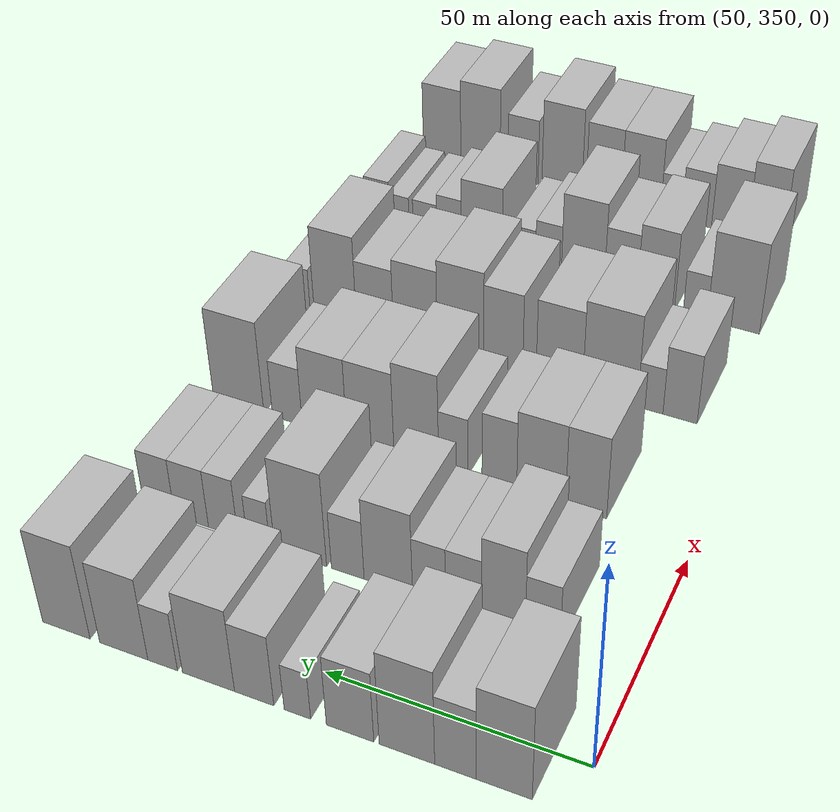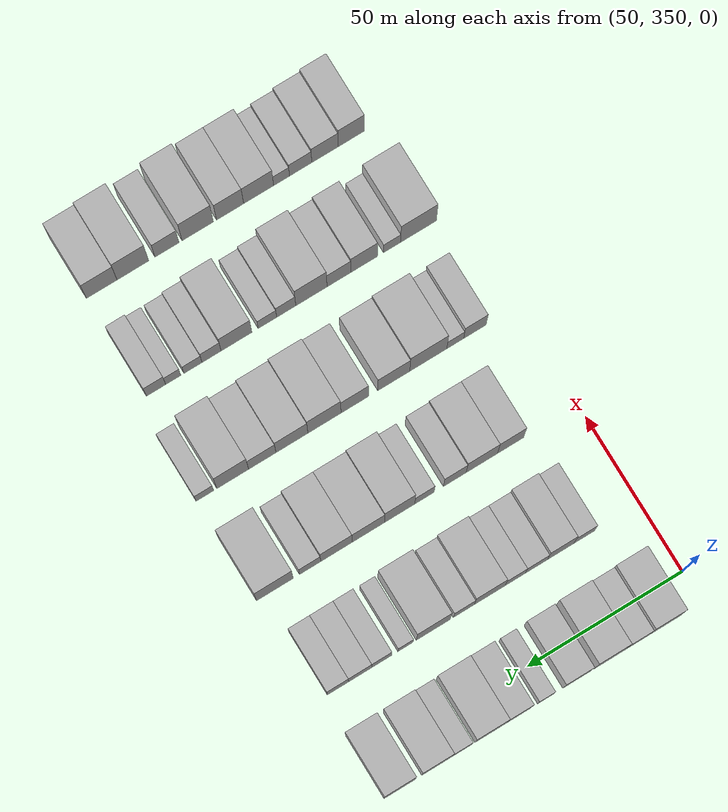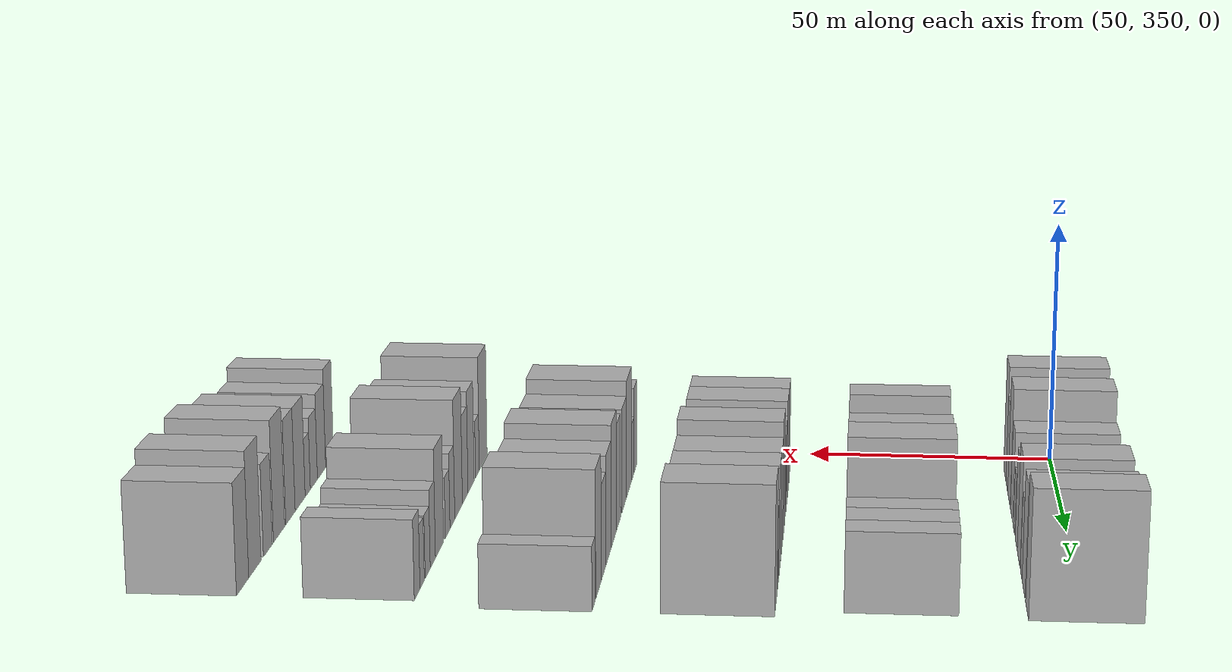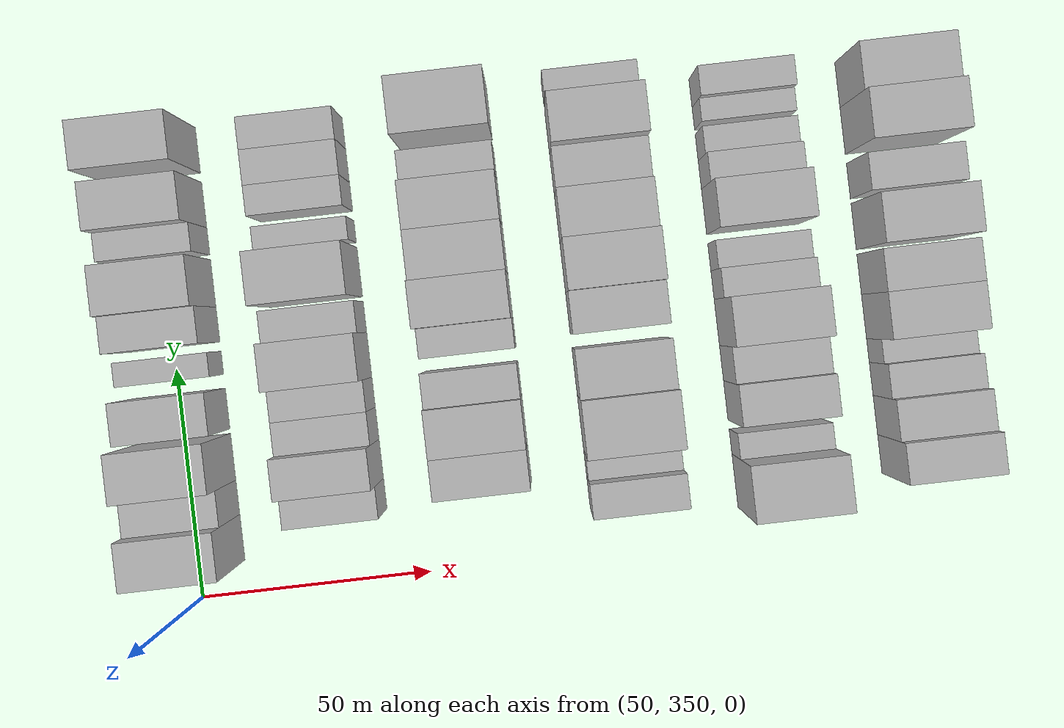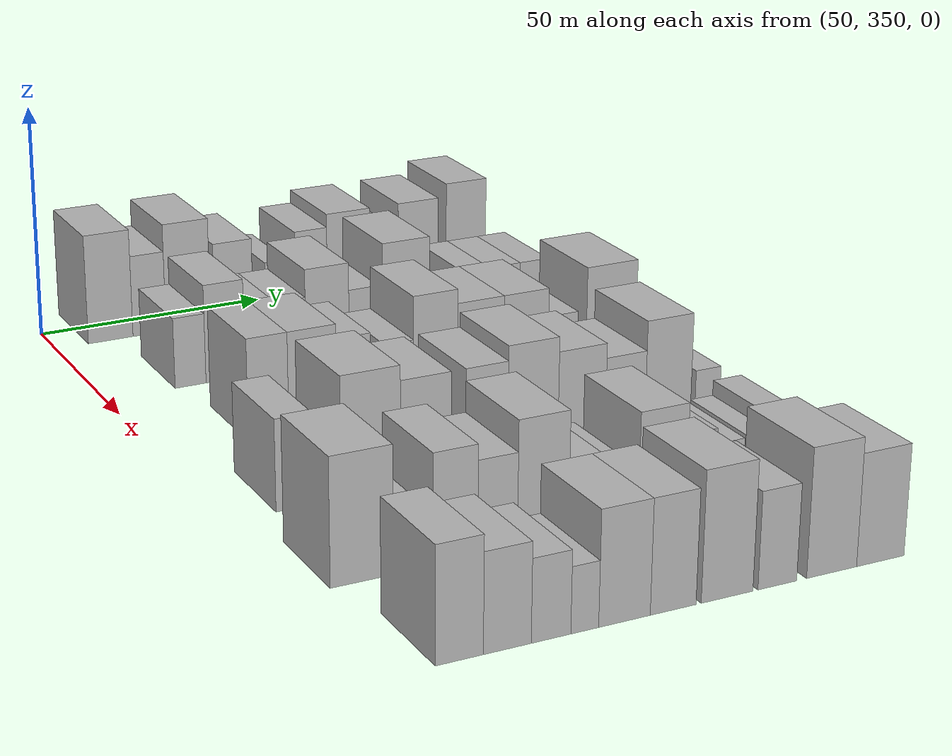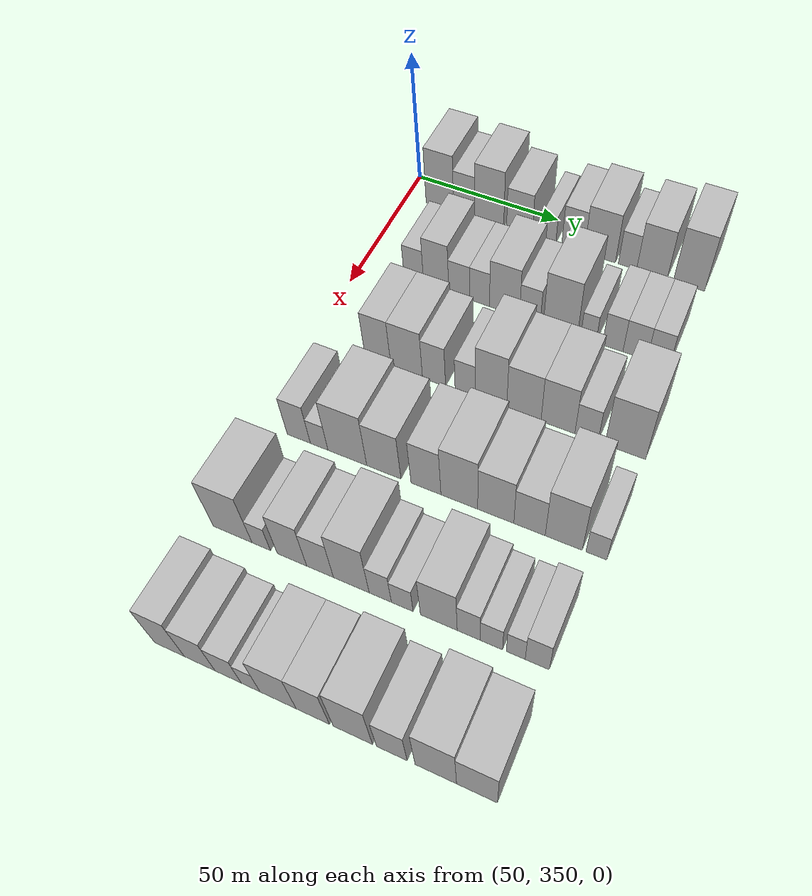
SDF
<sdf version="1.6">
 <world name="default">
  <model name="building_112">
   <static>1</static>
   <pose>50.0000 362.0780 0 0.000000 0.000000 0.000000</pose>
   <link name="link">
    <pose>0 0 12.00 0 0 0</pose>
    <collision name="collision"><geometry><box><size>20.0000 9.9844 24.0000</size></box></geometry></collision>
    <visual name="visual">
     <cast_shadows>0</cast_shadows>
     <geometry><box><size>20.0000 9.9844 24.0000</size></box></geometry>
     <material>
      <script>
       <uri>model://HANNAS_wall/materials/scripts</uri>
       <uri>model://HANNAS_wall/materials/textures</uri>
       <name>vrc/HANNAS_wall</name>
      </script>
     </material>
    </visual>
   </link>
  </model>
  <model name="building_113">
   <static>1</static>
   <pose>50.0000 370.8257 0 0.000000 0.000000 0.000000</pose>
   <link name="link">
    <pose>0 0 9.00 0 0 0</pose>
    <collision name="collision"><geometry><box><size>20.0000 7.5111 18.0000</size></box></geometry></collision>
    <visual name="visual">
     <cast_shadows>0</cast_shadows>
     <geometry><box><size>20.0000 7.5111 18.0000</size></box></geometry>
     <material>
      <script>
       <uri>model://HANNAS_wall/materials/scripts</uri>
       <uri>model://HANNAS_wall/materials/textures</uri>
       <name>vrc/HANNAS_wall</name>
      </script>
     </material>
    </visual>
   </link>
  </model>
  <model name="building_114">
   <static>1</static>
   <pose>50.0000 379.7075 0 0.000000 0.000000 0.000000</pose>
   <link name="link">
    <pose>0 0 12.00 0 0 0</pose>
    <collision name="collision"><geometry><box><size>20.0000 10.2525 24.0000</size></box></geometry></collision>
    <visual name="visual">
     <cast_shadows>0</cast_shadows>
     <geometry><box><size>20.0000 10.2525 24.0000</size></box></geometry>
     <material>
      <script>
       <uri>model://HANNAS_wall/materials/scripts</uri>
       <uri>model://HANNAS_wall/materials/textures</uri>
       <name>vrc/HANNAS_wall</name>
      </script>
     </material>
    </visual>
   </link>
  </model>
  <model name="building_115">
   <static>1</static>
   <pose>50.0000 390.2999 0 0.000000 0.000000 0.000000</pose>
   <link name="link">
    <pose>0 0 9.00 0 0 0</pose>
    <collision name="collision"><geometry><box><size>20.0000 8.9322 18.0000</size></box></geometry></collision>
    <visual name="visual">
     <cast_shadows>0</cast_shadows>
     <geometry><box><size>20.0000 8.9322 18.0000</size></box></geometry>
     <material>
      <script>
       <uri>model://HANNAS_wall/materials/scripts</uri>
       <uri>model://HANNAS_wall/materials/textures</uri>
       <name>vrc/HANNAS_wall</name>
      </script>
     </material>
    </visual>
   </link>
  </model>
  <model name="building_116">
   <static>1</static>
   <pose>50.0000 400.3165 0 0.000000 0.000000 0.000000</pose>
   <link name="link">
    <pose>0 0 6.00 0 0 0</pose>
    <collision name="collision"><geometry><box><size>20.0000 5.1012 12.0000</size></box></geometry></collision>
    <visual name="visual">
     <cast_shadows>0</cast_shadows>
     <geometry><box><size>20.0000 5.1012 12.0000</size></box></geometry>
     <material>
      <script>
       <uri>model://HANNAS_wall/materials/scripts</uri>
       <uri>model://HANNAS_wall/materials/textures</uri>
       <name>vrc/HANNAS_wall</name>
      </script>
     </material>
    </visual>
   </link>
  </model>
  <model name="building_117">
   <static>1</static>
   <pose>50.0000 408.7088 0 0.000000 0.000000 0.000000</pose>
   <link name="link">
    <pose>0 0 9.00 0 0 0</pose>
    <collision name="collision"><geometry><box><size>20.0000 7.6834 18.0000</size></box></geometry></collision>
    <visual name="visual">
     <cast_shadows>0</cast_shadows>
     <geometry><box><size>20.0000 7.6834 18.0000</size></box></geometry>
     <material>
      <script>
       <uri>model://HANNAS_wall/materials/scripts</uri>
       <uri>model://HANNAS_wall/materials/textures</uri>
       <name>vrc/HANNAS_wall</name>
      </script>
     </material>
    </visual>
   </link>
  </model>
  <model name="building_118">
   <static>1</static>
   <pose>50.0000 417.7447 0 0.000000 0.000000 0.000000</pose>
   <link name="link">
    <pose>0 0 10.50 0 0 0</pose>
    <collision name="collision"><geometry><box><size>20.0000 10.3885 21.0000</size></box></geometry></collision>
    <visual name="visual">
     <cast_shadows>0</cast_shadows>
     <geometry><box><size>20.0000 10.3885 21.0000</size></box></geometry>
     <material>
      <script>
       <uri>model://HANNAS_wall/materials/scripts</uri>
       <uri>model://HANNAS_wall/materials/textures</uri>
       <name>vrc/HANNAS_wall</name>
      </script>
     </material>
    </visual>
   </link>
  </model>
  <model name="building_119">
   <static>1</static>
   <pose>50.0000 426.9444 0 0.000000 0.000000 0.000000</pose>
   <link name="link">
    <pose>0 0 7.50 0 0 0</pose>
    <collision name="collision"><geometry><box><size>20.0000 6.0108 15.0000</size></box></geometry></collision>
    <visual name="visual">
     <cast_shadows>0</cast_shadows>
     <geometry><box><size>20.0000 6.0108 15.0000</size></box></geometry>
     <material>
      <script>
       <uri>model://HANNAS_wall/materials/scripts</uri>
       <uri>model://HANNAS_wall/materials/textures</uri>
       <name>vrc/HANNAS_wall</name>
      </script>
     </material>
    </visual>
   </link>
  </model>
  <model name="building_120">
   <static>1</static>
   <pose>50.0000 434.9145 0 0.000000 0.000000 0.000000</pose>
   <link name="link">
    <pose>0 0 10.50 0 0 0</pose>
    <collision name="collision"><geometry><box><size>20.0000 9.9293 21.0000</size></box></geometry></collision>
    <visual name="visual">
     <cast_shadows>0</cast_shadows>
     <geometry><box><size>20.0000 9.9293 21.0000</size></box></geometry>
     <material>
      <script>
       <uri>model://HANNAS_wall/materials/scripts</uri>
       <uri>model://HANNAS_wall/materials/textures</uri>
       <name>vrc/HANNAS_wall</name>
      </script>
     </material>
    </visual>
   </link>
  </model>
  <model name="building_121">
   <static>1</static>
   <pose>50.0000 446.8760 0 0.000000 0.000000 0.000000</pose>
   <link name="link">
    <pose>0 0 12.00 0 0 0</pose>
    <collision name="collision"><geometry><box><size>20.0000 9.9938 24.0000</size></box></geometry></collision>
    <visual name="visual">
     <cast_shadows>0</cast_shadows>
     <geometry><box><size>20.0000 9.9938 24.0000</size></box></geometry>
     <material>
      <script>
       <uri>model://HANNAS_wall/materials/scripts</uri>
       <uri>model://HANNAS_wall/materials/textures</uri>
       <name>vrc/HANNAS_wall</name>
      </script>
     </material>
    </visual>
   </link>
  </model>
  <model name="building_236">
   <static>1</static>
   <pose>82.0000 367.9858 0 0.000000 0.000000 0.000000</pose>
   <link name="link">
    <pose>0 0 7.50 0 0 0</pose>
    <collision name="collision"><geometry><box><size>20.0000 6.6871 15.0000</size></box></geometry></collision>
    <visual name="visual">
     <cast_shadows>0</cast_shadows>
     <geometry><box><size>20.0000 6.6871 15.0000</size></box></geometry>
     <material>
      <script>
       <uri>model://HANNAS_wall/materials/scripts</uri>
       <uri>model://HANNAS_wall/materials/textures</uri>
       <name>vrc/HANNAS_wall</name>
      </script>
     </material>
    </visual>
   </link>
  </model>
  <model name="building_237">
   <static>1</static>
   <pose>82.0000 375.6049 0 0.000000 0.000000 0.000000</pose>
   <link name="link">
    <pose>0 0 10.50 0 0 0</pose>
    <collision name="collision"><geometry><box><size>20.0000 8.5512 21.0000</size></box></geometry></collision>
    <visual name="visual">
     <cast_shadows>0</cast_shadows>
     <geometry><box><size>20.0000 8.5512 21.0000</size></box></geometry>
     <material>
      <script>
       <uri>model://HANNAS_wall/materials/scripts</uri>
       <uri>model://HANNAS_wall/materials/textures</uri>
       <name>vrc/HANNAS_wall</name>
      </script>
     </material>
    </visual>
   </link>
  </model>
  <model name="building_238">
   <static>1</static>
   <pose>82.0000 383.3863 0 0.000000 0.000000 0.000000</pose>
   <link name="link">
    <pose>0 0 7.50 0 0 0</pose>
    <collision name="collision"><geometry><box><size>20.0000 7.0115 15.0000</size></box></geometry></collision>
    <visual name="visual">
     <cast_shadows>0</cast_shadows>
     <geometry><box><size>20.0000 7.0115 15.0000</size></box></geometry>
     <material>
      <script>
       <uri>model://HANNAS_wall/materials/scripts</uri>
       <uri>model://HANNAS_wall/materials/textures</uri>
       <name>vrc/HANNAS_wall</name>
      </script>
     </material>
    </visual>
   </link>
  </model>
  <model name="building_239">
   <static>1</static>
   <pose>82.0000 390.1941 0 0.000000 0.000000 0.000000</pose>
   <link name="link">
    <pose>0 0 7.50 0 0 0</pose>
    <collision name="collision"><geometry><box><size>20.0000 6.6041 15.0000</size></box></geometry></collision>
    <visual name="visual">
     <cast_shadows>0</cast_shadows>
     <geometry><box><size>20.0000 6.6041 15.0000</size></box></geometry>
     <material>
      <script>
       <uri>model://HANNAS_wall/materials/scripts</uri>
       <uri>model://HANNAS_wall/materials/textures</uri>
       <name>vrc/HANNAS_wall</name>
      </script>
     </material>
    </visual>
   </link>
  </model>
  <model name="building_240">
   <static>1</static>
   <pose>82.0000 398.4101 0 0.000000 0.000000 0.000000</pose>
   <link name="link">
    <pose>0 0 10.50 0 0 0</pose>
    <collision name="collision"><geometry><box><size>20.0000 9.8278 21.0000</size></box></geometry></collision>
    <visual name="visual">
     <cast_shadows>0</cast_shadows>
     <geometry><box><size>20.0000 9.8278 21.0000</size></box></geometry>
     <material>
      <script>
       <uri>model://HANNAS_wall/materials/scripts</uri>
       <uri>model://HANNAS_wall/materials/textures</uri>
       <name>vrc/HANNAS_wall</name>
      </script>
     </material>
    </visual>
   </link>
  </model>
  <model name="building_241">
   <static>1</static>
   <pose>82.0000 406.6885 0 0.000000 0.000000 0.000000</pose>
   <link name="link">
    <pose>0 0 7.50 0 0 0</pose>
    <collision name="collision"><geometry><box><size>20.0000 6.7291 15.0000</size></box></geometry></collision>
    <visual name="visual">
     <cast_shadows>0</cast_shadows>
     <geometry><box><size>20.0000 6.7291 15.0000</size></box></geometry>
     <material>
      <script>
       <uri>model://HANNAS_wall/materials/scripts</uri>
       <uri>model://HANNAS_wall/materials/textures</uri>
       <name>vrc/HANNAS_wall</name>
      </script>
     </material>
    </visual>
   </link>
  </model>
  <model name="building_242">
   <static>1</static>
   <pose>82.0000 416.4906 0 0.000000 0.000000 0.000000</pose>
   <link name="link">
    <pose>0 0 12.00 0 0 0</pose>
    <collision name="collision"><geometry><box><size>20.0000 10.8752 24.0000</size></box></geometry></collision>
    <visual name="visual">
     <cast_shadows>0</cast_shadows>
     <geometry><box><size>20.0000 10.8752 24.0000</size></box></geometry>
     <material>
      <script>
       <uri>model://HANNAS_wall/materials/scripts</uri>
       <uri>model://HANNAS_wall/materials/textures</uri>
       <name>vrc/HANNAS_wall</name>
      </script>
     </material>
    </visual>
   </link>
  </model>
  <model name="building_243">
   <static>1</static>
   <pose>82.0000 425.3655 0 0.000000 0.000000 0.000000</pose>
   <link name="link">
    <pose>0 0 6.00 0 0 0</pose>
    <collision name="collision"><geometry><box><size>20.0000 4.8745 12.0000</size></box></geometry></collision>
    <visual name="visual">
     <cast_shadows>0</cast_shadows>
     <geometry><box><size>20.0000 4.8745 12.0000</size></box></geometry>
     <material>
      <script>
       <uri>model://HANNAS_wall/materials/scripts</uri>
       <uri>model://HANNAS_wall/materials/textures</uri>
       <name>vrc/HANNAS_wall</name>
      </script>
     </material>
    </visual>
   </link>
  </model>
  <model name="building_244">
   <static>1</static>
   <pose>82.0000 432.9774 0 0.000000 0.000000 0.000000</pose>
   <link name="link">
    <pose>0 0 7.50 0 0 0</pose>
    <collision name="collision"><geometry><box><size>20.0000 6.3494 15.0000</size></box></geometry></collision>
    <visual name="visual">
     <cast_shadows>0</cast_shadows>
     <geometry><box><size>20.0000 6.3494 15.0000</size></box></geometry>
     <material>
      <script>
       <uri>model://HANNAS_wall/materials/scripts</uri>
       <uri>model://HANNAS_wall/materials/textures</uri>
       <name>vrc/HANNAS_wall</name>
      </script>
     </material>
    </visual>
   </link>
  </model>
  <model name="building_245">
   <static>1</static>
   <pose>82.0000 439.8481 0 0.000000 0.000000 0.000000</pose>
   <link name="link">
    <pose>0 0 7.50 0 0 0</pose>
    <collision name="collision"><geometry><box><size>20.0000 7.3920 15.0000</size></box></geometry></collision>
    <visual name="visual">
     <cast_shadows>0</cast_shadows>
     <geometry><box><size>20.0000 7.3920 15.0000</size></box></geometry>
     <material>
      <script>
       <uri>model://HANNAS_wall/materials/scripts</uri>
       <uri>model://HANNAS_wall/materials/textures</uri>
       <name>vrc/HANNAS_wall</name>
      </script>
     </material>
    </visual>
   </link>
  </model>
  <model name="building_246">
   <static>1</static>
   <pose>82.0000 446.9470 0 0.000000 0.000000 0.000000</pose>
   <link name="link">
    <pose>0 0 7.50 0 0 0</pose>
    <collision name="collision"><geometry><box><size>20.0000 6.8058 15.0000</size></box></geometry></collision>
    <visual name="visual">
     <cast_shadows>0</cast_shadows>
     <geometry><box><size>20.0000 6.8058 15.0000</size></box></geometry>
     <material>
      <script>
       <uri>model://HANNAS_wall/materials/scripts</uri>
       <uri>model://HANNAS_wall/materials/textures</uri>
       <name>vrc/HANNAS_wall</name>
      </script>
     </material>
    </visual>
   </link>
  </model>
  <model name="building_364">
   <static>1</static>
   <pose>114.0000 371.8014 0 0.000000 0.000000 0.000000</pose>
   <link name="link">
    <pose>0 0 10.50 0 0 0</pose>
    <collision name="collision"><geometry><box><size>20.0000 8.4109 21.0000</size></box></geometry></collision>
    <visual name="visual">
     <cast_shadows>0</cast_shadows>
     <geometry><box><size>20.0000 8.4109 21.0000</size></box></geometry>
     <material>
      <script>
       <uri>model://HANNAS_wall/materials/scripts</uri>
       <uri>model://HANNAS_wall/materials/textures</uri>
       <name>vrc/HANNAS_wall</name>
      </script>
     </material>
    </visual>
   </link>
  </model>
  <model name="building_365">
   <static>1</static>
   <pose>114.0000 381.0727 0 0.000000 0.000000 0.000000</pose>
   <link name="link">
    <pose>0 0 10.50 0 0 0</pose>
    <collision name="collision"><geometry><box><size>20.0000 10.1318 21.0000</size></box></geometry></collision>
    <visual name="visual">
     <cast_shadows>0</cast_shadows>
     <geometry><box><size>20.0000 10.1318 21.0000</size></box></geometry>
     <material>
      <script>
       <uri>model://HANNAS_wall/materials/scripts</uri>
       <uri>model://HANNAS_wall/materials/textures</uri>
       <name>vrc/HANNAS_wall</name>
      </script>
     </material>
    </visual>
   </link>
  </model>
  <model name="building_366">
   <static>1</static>
   <pose>114.0000 389.7986 0 0.000000 0.000000 0.000000</pose>
   <link name="link">
    <pose>0 0 9.00 0 0 0</pose>
    <collision name="collision"><geometry><box><size>20.0000 7.3199 18.0000</size></box></geometry></collision>
    <visual name="visual">
     <cast_shadows>0</cast_shadows>
     <geometry><box><size>20.0000 7.3199 18.0000</size></box></geometry>
     <material>
      <script>
       <uri>model://HANNAS_wall/materials/scripts</uri>
       <uri>model://HANNAS_wall/materials/textures</uri>
       <name>vrc/HANNAS_wall</name>
      </script>
     </material>
    </visual>
   </link>
  </model>
  <model name="building_367">
   <static>1</static>
   <pose>114.0000 399.5827 0 0.000000 0.000000 0.000000</pose>
   <link name="link">
    <pose>0 0 7.50 0 0 0</pose>
    <collision name="collision"><geometry><box><size>20.0000 6.2483 15.0000</size></box></geometry></collision>
    <visual name="visual">
     <cast_shadows>0</cast_shadows>
     <geometry><box><size>20.0000 6.2483 15.0000</size></box></geometry>
     <material>
      <script>
       <uri>model://HANNAS_wall/materials/scripts</uri>
       <uri>model://HANNAS_wall/materials/textures</uri>
       <name>vrc/HANNAS_wall</name>
      </script>
     </material>
    </visual>
   </link>
  </model>
  <model name="building_368">
   <static>1</static>
   <pose>114.0000 407.5663 0 0.000000 0.000000 0.000000</pose>
   <link name="link">
    <pose>0 0 12.00 0 0 0</pose>
    <collision name="collision"><geometry><box><size>20.0000 9.7189 24.0000</size></box></geometry></collision>
    <visual name="visual">
     <cast_shadows>0</cast_shadows>
     <geometry><box><size>20.0000 9.7189 24.0000</size></box></geometry>
     <material>
      <script>
       <uri>model://HANNAS_wall/materials/scripts</uri>
       <uri>model://HANNAS_wall/materials/textures</uri>
       <name>vrc/HANNAS_wall</name>
      </script>
     </material>
    </visual>
   </link>
  </model>
  <model name="building_369">
   <static>1</static>
   <pose>114.0000 417.6104 0 0.000000 0.000000 0.000000</pose>
   <link name="link">
    <pose>0 0 10.50 0 0 0</pose>
    <collision name="collision"><geometry><box><size>20.0000 10.3693 21.0000</size></box></geometry></collision>
    <visual name="visual">
     <cast_shadows>0</cast_shadows>
     <geometry><box><size>20.0000 10.3693 21.0000</size></box></geometry>
     <material>
      <script>
       <uri>model://HANNAS_wall/materials/scripts</uri>
       <uri>model://HANNAS_wall/materials/textures</uri>
       <name>vrc/HANNAS_wall</name>
      </script>
     </material>
    </visual>
   </link>
  </model>
  <model name="building_370">
   <static>1</static>
   <pose>114.0000 427.8332 0 0.000000 0.000000 0.000000</pose>
   <link name="link">
    <pose>0 0 10.50 0 0 0</pose>
    <collision name="collision"><geometry><box><size>20.0000 10.0763 21.0000</size></box></geometry></collision>
    <visual name="visual">
     <cast_shadows>0</cast_shadows>
     <geometry><box><size>20.0000 10.0763 21.0000</size></box></geometry>
     <material>
      <script>
       <uri>model://HANNAS_wall/materials/scripts</uri>
       <uri>model://HANNAS_wall/materials/textures</uri>
       <name>vrc/HANNAS_wall</name>
      </script>
     </material>
    </visual>
   </link>
  </model>
  <model name="building_371">
   <static>1</static>
   <pose>114.0000 436.2727 0 0.000000 0.000000 0.000000</pose>
   <link name="link">
    <pose>0 0 7.50 0 0 0</pose>
    <collision name="collision"><geometry><box><size>20.0000 6.8027 15.0000</size></box></geometry></collision>
    <visual name="visual">
     <cast_shadows>0</cast_shadows>
     <geometry><box><size>20.0000 6.8027 15.0000</size></box></geometry>
     <material>
      <script>
       <uri>model://HANNAS_wall/materials/scripts</uri>
       <uri>model://HANNAS_wall/materials/textures</uri>
       <name>vrc/HANNAS_wall</name>
      </script>
     </material>
    </visual>
   </link>
  </model>
  <model name="building_372">
   <static>1</static>
   <pose>114.0000 447.5339 0 0.000000 0.000000 0.000000</pose>
   <link name="link">
    <pose>0 0 12.00 0 0 0</pose>
    <collision name="collision"><geometry><box><size>20.0000 11.7199 24.0000</size></box></geometry></collision>
    <visual name="visual">
     <cast_shadows>0</cast_shadows>
     <geometry><box><size>20.0000 11.7199 24.0000</size></box></geometry>
     <material>
      <script>
       <uri>model://HANNAS_wall/materials/scripts</uri>
       <uri>model://HANNAS_wall/materials/textures</uri>
       <name>vrc/HANNAS_wall</name>
      </script>
     </material>
    </visual>
   </link>
  </model>
  <model name="building_474">
   <static>1</static>
   <pose>146.0000 363.4944 0 0.000000 0.000000 0.000000</pose>
   <link name="link">
    <pose>0 0 9.00 0 0 0</pose>
    <collision name="collision"><geometry><box><size>20.0000 7.2838 18.0000</size></box></geometry></collision>
    <visual name="visual">
     <cast_shadows>0</cast_shadows>
     <geometry><box><size>20.0000 7.2838 18.0000</size></box></geometry>
     <material>
      <script>
       <uri>model://HANNAS_wall/materials/scripts</uri>
       <uri>model://HANNAS_wall/materials/textures</uri>
       <name>vrc/HANNAS_wall</name>
      </script>
     </material>
    </visual>
   </link>
  </model>
  <model name="building_475">
   <static>1</static>
   <pose>146.0000 369.8766 0 0.000000 0.000000 0.000000</pose>
   <link name="link">
    <pose>0 0 6.00 0 0 0</pose>
    <collision name="collision"><geometry><box><size>20.0000 5.4807 12.0000</size></box></geometry></collision>
    <visual name="visual">
     <cast_shadows>0</cast_shadows>
     <geometry><box><size>20.0000 5.4807 12.0000</size></box></geometry>
     <material>
      <script>
       <uri>model://HANNAS_wall/materials/scripts</uri>
       <uri>model://HANNAS_wall/materials/textures</uri>
       <name>vrc/HANNAS_wall</name>
      </script>
     </material>
    </visual>
   </link>
  </model>
  <model name="building_476">
   <static>1</static>
   <pose>146.0000 378.6039 0 0.000000 0.000000 0.000000</pose>
   <link name="link">
    <pose>0 0 12.00 0 0 0</pose>
    <collision name="collision"><geometry><box><size>20.0000 11.9739 24.0000</size></box></geometry></collision>
    <visual name="visual">
     <cast_shadows>0</cast_shadows>
     <geometry><box><size>20.0000 11.9739 24.0000</size></box></geometry>
     <material>
      <script>
       <uri>model://HANNAS_wall/materials/scripts</uri>
       <uri>model://HANNAS_wall/materials/textures</uri>
       <name>vrc/HANNAS_wall</name>
      </script>
     </material>
    </visual>
   </link>
  </model>
  <model name="building_477">
   <static>1</static>
   <pose>146.0000 389.7558 0 0.000000 0.000000 0.000000</pose>
   <link name="link">
    <pose>0 0 10.50 0 0 0</pose>
    <collision name="collision"><geometry><box><size>20.0000 10.3299 21.0000</size></box></geometry></collision>
    <visual name="visual">
     <cast_shadows>0</cast_shadows>
     <geometry><box><size>20.0000 10.3299 21.0000</size></box></geometry>
     <material>
      <script>
       <uri>model://HANNAS_wall/materials/scripts</uri>
       <uri>model://HANNAS_wall/materials/textures</uri>
       <name>vrc/HANNAS_wall</name>
      </script>
     </material>
    </visual>
   </link>
  </model>
  <model name="building_478">
   <static>1</static>
   <pose>146.0000 402.3404 0 0.000000 0.000000 0.000000</pose>
   <link name="link">
    <pose>0 0 10.50 0 0 0</pose>
    <collision name="collision"><geometry><box><size>20.0000 8.8393 21.0000</size></box></geometry></collision>
    <visual name="visual">
     <cast_shadows>0</cast_shadows>
     <geometry><box><size>20.0000 8.8393 21.0000</size></box></geometry>
     <material>
      <script>
       <uri>model://HANNAS_wall/materials/scripts</uri>
       <uri>model://HANNAS_wall/materials/textures</uri>
       <name>vrc/HANNAS_wall</name>
      </script>
     </material>
    </visual>
   </link>
  </model>
  <model name="building_479">
   <static>1</static>
   <pose>146.0000 412.0929 0 0.000000 0.000000 0.000000</pose>
   <link name="link">
    <pose>0 0 12.00 0 0 0</pose>
    <collision name="collision"><geometry><box><size>20.0000 10.6656 24.0000</size></box></geometry></collision>
    <visual name="visual">
     <cast_shadows>0</cast_shadows>
     <geometry><box><size>20.0000 10.6656 24.0000</size></box></geometry>
     <material>
      <script>
       <uri>model://HANNAS_wall/materials/scripts</uri>
       <uri>model://HANNAS_wall/materials/textures</uri>
       <name>vrc/HANNAS_wall</name>
      </script>
     </material>
    </visual>
   </link>
  </model>
  <model name="building_480">
   <static>1</static>
   <pose>146.0000 422.5593 0 0.000000 0.000000 0.000000</pose>
   <link name="link">
    <pose>0 0 10.50 0 0 0</pose>
    <collision name="collision"><geometry><box><size>20.0000 10.2672 21.0000</size></box></geometry></collision>
    <visual name="visual">
     <cast_shadows>0</cast_shadows>
     <geometry><box><size>20.0000 10.2672 21.0000</size></box></geometry>
     <material>
      <script>
       <uri>model://HANNAS_wall/materials/scripts</uri>
       <uri>model://HANNAS_wall/materials/textures</uri>
       <name>vrc/HANNAS_wall</name>
      </script>
     </material>
    </visual>
   </link>
  </model>
  <model name="building_481">
   <static>1</static>
   <pose>146.0000 432.0831 0 0.000000 0.000000 0.000000</pose>
   <link name="link">
    <pose>0 0 9.00 0 0 0</pose>
    <collision name="collision"><geometry><box><size>20.0000 8.7803 18.0000</size></box></geometry></collision>
    <visual name="visual">
     <cast_shadows>0</cast_shadows>
     <geometry><box><size>20.0000 8.7803 18.0000</size></box></geometry>
     <material>
      <script>
       <uri>model://HANNAS_wall/materials/scripts</uri>
       <uri>model://HANNAS_wall/materials/textures</uri>
       <name>vrc/HANNAS_wall</name>
      </script>
     </material>
    </visual>
   </link>
  </model>
  <model name="building_482">
   <static>1</static>
   <pose>146.0000 441.5729 0 0.000000 0.000000 0.000000</pose>
   <link name="link">
    <pose>0 0 12.00 0 0 0</pose>
    <collision name="collision"><geometry><box><size>20.0000 10.1993 24.0000</size></box></geometry></collision>
    <visual name="visual">
     <cast_shadows>0</cast_shadows>
     <geometry><box><size>20.0000 10.1993 24.0000</size></box></geometry>
     <material>
      <script>
       <uri>model://HANNAS_wall/materials/scripts</uri>
       <uri>model://HANNAS_wall/materials/textures</uri>
       <name>vrc/HANNAS_wall</name>
      </script>
     </material>
    </visual>
   </link>
  </model>
  <model name="building_483">
   <static>1</static>
   <pose>146.0000 450.4978 0 0.000000 0.000000 0.000000</pose>
   <link name="link">
    <pose>0 0 6.00 0 0 0</pose>
    <collision name="collision"><geometry><box><size>20.0000 5.6505 12.0000</size></box></geometry></collision>
    <visual name="visual">
     <cast_shadows>0</cast_shadows>
     <geometry><box><size>20.0000 5.6505 12.0000</size></box></geometry>
     <material>
      <script>
       <uri>model://HANNAS_wall/materials/scripts</uri>
       <uri>model://HANNAS_wall/materials/textures</uri>
       <name>vrc/HANNAS_wall</name>
      </script>
     </material>
    </visual>
   </link>
  </model>
  <model name="building_603">
   <static>1</static>
   <pose>178.0000 362.0570 0 0.000000 0.000000 0.000000</pose>
   <link name="link">
    <pose>0 0 12.00 0 0 0</pose>
    <collision name="collision"><geometry><box><size>20.0000 11.6797 24.0000</size></box></geometry></collision>
    <visual name="visual">
     <cast_shadows>0</cast_shadows>
     <geometry><box><size>20.0000 11.6797 24.0000</size></box></geometry>
     <material>
      <script>
       <uri>model://HANNAS_wall/materials/scripts</uri>
       <uri>model://HANNAS_wall/materials/textures</uri>
       <name>vrc/HANNAS_wall</name>
      </script>
     </material>
    </visual>
   </link>
  </model>
  <model name="building_604">
   <static>1</static>
   <pose>178.0000 370.6380 0 0.000000 0.000000 0.000000</pose>
   <link name="link">
    <pose>0 0 6.00 0 0 0</pose>
    <collision name="collision"><geometry><box><size>20.0000 5.4823 12.0000</size></box></geometry></collision>
    <visual name="visual">
     <cast_shadows>0</cast_shadows>
     <geometry><box><size>20.0000 5.4823 12.0000</size></box></geometry>
     <material>
      <script>
       <uri>model://HANNAS_wall/materials/scripts</uri>
       <uri>model://HANNAS_wall/materials/textures</uri>
       <name>vrc/HANNAS_wall</name>
      </script>
     </material>
    </visual>
   </link>
  </model>
  <model name="building_605">
   <static>1</static>
   <pose>178.0000 379.6822 0 0.000000 0.000000 0.000000</pose>
   <link name="link">
    <pose>0 0 10.50 0 0 0</pose>
    <collision name="collision"><geometry><box><size>20.0000 8.6060 21.0000</size></box></geometry></collision>
    <visual name="visual">
     <cast_shadows>0</cast_shadows>
     <geometry><box><size>20.0000 8.6060 21.0000</size></box></geometry>
     <material>
      <script>
       <uri>model://HANNAS_wall/materials/scripts</uri>
       <uri>model://HANNAS_wall/materials/textures</uri>
       <name>vrc/HANNAS_wall</name>
      </script>
     </material>
    </visual>
   </link>
  </model>
  <model name="building_606">
   <static>1</static>
   <pose>178.0000 387.8348 0 0.000000 0.000000 0.000000</pose>
   <link name="link">
    <pose>0 0 9.00 0 0 0</pose>
    <collision name="collision"><geometry><box><size>20.0000 7.6992 18.0000</size></box></geometry></collision>
    <visual name="visual">
     <cast_shadows>0</cast_shadows>
     <geometry><box><size>20.0000 7.6992 18.0000</size></box></geometry>
     <material>
      <script>
       <uri>model://HANNAS_wall/materials/scripts</uri>
       <uri>model://HANNAS_wall/materials/textures</uri>
       <name>vrc/HANNAS_wall</name>
      </script>
     </material>
    </visual>
   </link>
  </model>
  <model name="building_607">
   <static>1</static>
   <pose>178.0000 396.7441 0 0.000000 0.000000 0.000000</pose>
   <link name="link">
    <pose>0 0 12.00 0 0 0</pose>
    <collision name="collision"><geometry><box><size>20.0000 10.1196 24.0000</size></box></geometry></collision>
    <visual name="visual">
     <cast_shadows>0</cast_shadows>
     <geometry><box><size>20.0000 10.1196 24.0000</size></box></geometry>
     <material>
      <script>
       <uri>model://HANNAS_wall/materials/scripts</uri>
       <uri>model://HANNAS_wall/materials/textures</uri>
       <name>vrc/HANNAS_wall</name>
      </script>
     </material>
    </visual>
   </link>
  </model>
  <model name="building_608">
   <static>1</static>
   <pose>178.0000 404.8907 0 0.000000 0.000000 0.000000</pose>
   <link name="link">
    <pose>0 0 7.50 0 0 0</pose>
    <collision name="collision"><geometry><box><size>20.0000 6.1735 15.0000</size></box></geometry></collision>
    <visual name="visual">
     <cast_shadows>0</cast_shadows>
     <geometry><box><size>20.0000 6.1735 15.0000</size></box></geometry>
     <material>
      <script>
       <uri>model://HANNAS_wall/materials/scripts</uri>
       <uri>model://HANNAS_wall/materials/textures</uri>
       <name>vrc/HANNAS_wall</name>
      </script>
     </material>
    </visual>
   </link>
  </model>
  <model name="building_609">
   <static>1</static>
   <pose>178.0000 410.9638 0 0.000000 0.000000 0.000000</pose>
   <link name="link">
    <pose>0 0 6.00 0 0 0</pose>
    <collision name="collision"><geometry><box><size>20.0000 5.9727 12.0000</size></box></geometry></collision>
    <visual name="visual">
     <cast_shadows>0</cast_shadows>
     <geometry><box><size>20.0000 5.9727 12.0000</size></box></geometry>
     <material>
      <script>
       <uri>model://HANNAS_wall/materials/scripts</uri>
       <uri>model://HANNAS_wall/materials/textures</uri>
       <name>vrc/HANNAS_wall</name>
      </script>
     </material>
    </visual>
   </link>
  </model>
  <model name="building_610">
   <static>1</static>
   <pose>178.0000 420.9175 0 0.000000 0.000000 0.000000</pose>
   <link name="link">
    <pose>0 0 10.50 0 0 0</pose>
    <collision name="collision"><geometry><box><size>20.0000 9.9346 21.0000</size></box></geometry></collision>
    <visual name="visual">
     <cast_shadows>0</cast_shadows>
     <geometry><box><size>20.0000 9.9346 21.0000</size></box></geometry>
     <material>
      <script>
       <uri>model://HANNAS_wall/materials/scripts</uri>
       <uri>model://HANNAS_wall/materials/textures</uri>
       <name>vrc/HANNAS_wall</name>
      </script>
     </material>
    </visual>
   </link>
  </model>
  <model name="building_611">
   <static>1</static>
   <pose>178.0000 428.9545 0 0.000000 0.000000 0.000000</pose>
   <link name="link">
    <pose>0 0 7.50 0 0 0</pose>
    <collision name="collision"><geometry><box><size>20.0000 6.1394 15.0000</size></box></geometry></collision>
    <visual name="visual">
     <cast_shadows>0</cast_shadows>
     <geometry><box><size>20.0000 6.1394 15.0000</size></box></geometry>
     <material>
      <script>
       <uri>model://HANNAS_wall/materials/scripts</uri>
       <uri>model://HANNAS_wall/materials/textures</uri>
       <name>vrc/HANNAS_wall</name>
      </script>
     </material>
    </visual>
   </link>
  </model>
  <model name="building_612">
   <static>1</static>
   <pose>178.0000 434.9382 0 0.000000 0.000000 0.000000</pose>
   <link name="link">
    <pose>0 0 6.00 0 0 0</pose>
    <collision name="collision"><geometry><box><size>20.0000 5.8280 12.0000</size></box></geometry></collision>
    <visual name="visual">
     <cast_shadows>0</cast_shadows>
     <geometry><box><size>20.0000 5.8280 12.0000</size></box></geometry>
     <material>
      <script>
       <uri>model://HANNAS_wall/materials/scripts</uri>
       <uri>model://HANNAS_wall/materials/textures</uri>
       <name>vrc/HANNAS_wall</name>
      </script>
     </material>
    </visual>
   </link>
  </model>
  <model name="building_613">
   <static>1</static>
   <pose>178.0000 441.2882 0 0.000000 0.000000 0.000000</pose>
   <link name="link">
    <pose>0 0 6.00 0 0 0</pose>
    <collision name="collision"><geometry><box><size>20.0000 4.8720 12.0000</size></box></geometry></collision>
    <visual name="visual">
     <cast_shadows>0</cast_shadows>
     <geometry><box><size>20.0000 4.8720 12.0000</size></box></geometry>
     <material>
      <script>
       <uri>model://HANNAS_wall/materials/scripts</uri>
       <uri>model://HANNAS_wall/materials/textures</uri>
       <name>vrc/HANNAS_wall</name>
      </script>
     </material>
    </visual>
   </link>
  </model>
  <model name="building_614">
   <static>1</static>
   <pose>178.0000 446.8241 0 0.000000 0.000000 0.000000</pose>
   <link name="link">
    <pose>0 0 7.50 0 0 0</pose>
    <collision name="collision"><geometry><box><size>20.0000 6.1998 15.0000</size></box></geometry></collision>
    <visual name="visual">
     <cast_shadows>0</cast_shadows>
     <geometry><box><size>20.0000 6.1998 15.0000</size></box></geometry>
     <material>
      <script>
       <uri>model://HANNAS_wall/materials/scripts</uri>
       <uri>model://HANNAS_wall/materials/textures</uri>
       <name>vrc/HANNAS_wall</name>
      </script>
     </material>
    </visual>
   </link>
  </model>
  <model name="building_722">
   <static>1</static>
   <pose>210.0000 364.2206 0 0.000000 0.000000 0.000000</pose>
   <link name="link">
    <pose>0 0 10.50 0 0 0</pose>
    <collision name="collision"><geometry><box><size>20.0000 8.5079 21.0000</size></box></geometry></collision>
    <visual name="visual">
     <cast_shadows>0</cast_shadows>
     <geometry><box><size>20.0000 8.5079 21.0000</size></box></geometry>
     <material>
      <script>
       <uri>model://HANNAS_wall/materials/scripts</uri>
       <uri>model://HANNAS_wall/materials/textures</uri>
       <name>vrc/HANNAS_wall</name>
      </script>
     </material>
    </visual>
   </link>
  </model>
  <model name="building_723">
   <static>1</static>
   <pose>210.0000 372.7769 0 0.000000 0.000000 0.000000</pose>
   <link name="link">
    <pose>0 0 9.00 0 0 0</pose>
    <collision name="collision"><geometry><box><size>20.0000 8.6049 18.0000</size></box></geometry></collision>
    <visual name="visual">
     <cast_shadows>0</cast_shadows>
     <geometry><box><size>20.0000 8.6049 18.0000</size></box></geometry>
     <material>
      <script>
       <uri>model://HANNAS_wall/materials/scripts</uri>
       <uri>model://HANNAS_wall/materials/textures</uri>
       <name>vrc/HANNAS_wall</name>
      </script>
     </material>
    </visual>
   </link>
  </model>
  <model name="building_724">
   <static>1</static>
   <pose>210.0000 380.6951 0 0.000000 0.000000 0.000000</pose>
   <link name="link">
    <pose>0 0 7.50 0 0 0</pose>
    <collision name="collision"><geometry><box><size>20.0000 7.2314 15.0000</size></box></geometry></collision>
    <visual name="visual">
     <cast_shadows>0</cast_shadows>
     <geometry><box><size>20.0000 7.2314 15.0000</size></box></geometry>
     <material>
      <script>
       <uri>model://HANNAS_wall/materials/scripts</uri>
       <uri>model://HANNAS_wall/materials/textures</uri>
       <name>vrc/HANNAS_wall</name>
      </script>
     </material>
    </visual>
   </link>
  </model>
  <model name="building_725">
   <static>1</static>
   <pose>210.0000 386.8893 0 0.000000 0.000000 0.000000</pose>
   <link name="link">
    <pose>0 0 6.00 0 0 0</pose>
    <collision name="collision"><geometry><box><size>20.0000 5.1571 12.0000</size></box></geometry></collision>
    <visual name="visual">
     <cast_shadows>0</cast_shadows>
     <geometry><box><size>20.0000 5.1571 12.0000</size></box></geometry>
     <material>
      <script>
       <uri>model://HANNAS_wall/materials/scripts</uri>
       <uri>model://HANNAS_wall/materials/textures</uri>
       <name>vrc/HANNAS_wall</name>
      </script>
     </material>
    </visual>
   </link>
  </model>
  <model name="building_726">
   <static>1</static>
   <pose>210.0000 394.3266 0 0.000000 0.000000 0.000000</pose>
   <link name="link">
    <pose>0 0 10.50 0 0 0</pose>
    <collision name="collision"><geometry><box><size>20.0000 9.7175 21.0000</size></box></geometry></collision>
    <visual name="visual">
     <cast_shadows>0</cast_shadows>
     <geometry><box><size>20.0000 9.7175 21.0000</size></box></geometry>
     <material>
      <script>
       <uri>model://HANNAS_wall/materials/scripts</uri>
       <uri>model://HANNAS_wall/materials/textures</uri>
       <name>vrc/HANNAS_wall</name>
      </script>
     </material>
    </visual>
   </link>
  </model>
  <model name="building_727">
   <static>1</static>
   <pose>210.0000 403.5790 0 0.000000 0.000000 0.000000</pose>
   <link name="link">
    <pose>0 0 10.50 0 0 0</pose>
    <collision name="collision"><geometry><box><size>20.0000 8.7872 21.0000</size></box></geometry></collision>
    <visual name="visual">
     <cast_shadows>0</cast_shadows>
     <geometry><box><size>20.0000 8.7872 21.0000</size></box></geometry>
     <material>
      <script>
       <uri>model://HANNAS_wall/materials/scripts</uri>
       <uri>model://HANNAS_wall/materials/textures</uri>
       <name>vrc/HANNAS_wall</name>
      </script>
     </material>
    </visual>
   </link>
  </model>
  <model name="building_728">
   <static>1</static>
   <pose>210.0000 414.0385 0 0.000000 0.000000 0.000000</pose>
   <link name="link">
    <pose>0 0 12.00 0 0 0</pose>
    <collision name="collision"><geometry><box><size>20.0000 10.1317 24.0000</size></box></geometry></collision>
    <visual name="visual">
     <cast_shadows>0</cast_shadows>
     <geometry><box><size>20.0000 10.1317 24.0000</size></box></geometry>
     <material>
      <script>
       <uri>model://HANNAS_wall/materials/scripts</uri>
       <uri>model://HANNAS_wall/materials/textures</uri>
       <name>vrc/HANNAS_wall</name>
      </script>
     </material>
    </visual>
   </link>
  </model>
  <model name="building_729">
   <static>1</static>
   <pose>210.0000 423.9856 0 0.000000 0.000000 0.000000</pose>
   <link name="link">
    <pose>0 0 9.00 0 0 0</pose>
    <collision name="collision"><geometry><box><size>20.0000 7.7624 18.0000</size></box></geometry></collision>
    <visual name="visual">
     <cast_shadows>0</cast_shadows>
     <geometry><box><size>20.0000 7.7624 18.0000</size></box></geometry>
     <material>
      <script>
       <uri>model://HANNAS_wall/materials/scripts</uri>
       <uri>model://HANNAS_wall/materials/textures</uri>
       <name>vrc/HANNAS_wall</name>
      </script>
     </material>
    </visual>
   </link>
  </model>
  <model name="building_730">
   <static>1</static>
   <pose>210.0000 434.9837 0 0.000000 0.000000 0.000000</pose>
   <link name="link">
    <pose>0 0 12.00 0 0 0</pose>
    <collision name="collision"><geometry><box><size>20.0000 10.2338 24.0000</size></box></geometry></collision>
    <visual name="visual">
     <cast_shadows>0</cast_shadows>
     <geometry><box><size>20.0000 10.2338 24.0000</size></box></geometry>
     <material>
      <script>
       <uri>model://HANNAS_wall/materials/scripts</uri>
       <uri>model://HANNAS_wall/materials/textures</uri>
       <name>vrc/HANNAS_wall</name>
      </script>
     </material>
    </visual>
   </link>
  </model>
  <model name="building_731">
   <static>1</static>
   <pose>210.0000 445.0441 0 0.000000 0.000000 0.000000</pose>
   <link name="link">
    <pose>0 0 10.50 0 0 0</pose>
    <collision name="collision"><geometry><box><size>20.0000 9.8872 21.0000</size></box></geometry></collision>
    <visual name="visual">
     <cast_shadows>0</cast_shadows>
     <geometry><box><size>20.0000 9.8872 21.0000</size></box></geometry>
     <material>
      <script>
       <uri>model://HANNAS_wall/materials/scripts</uri>
       <uri>model://HANNAS_wall/materials/textures</uri>
       <name>vrc/HANNAS_wall</name>
      </script>
     </material>
    </visual>
   </link>
  </model>
 </world>
</sdf>
